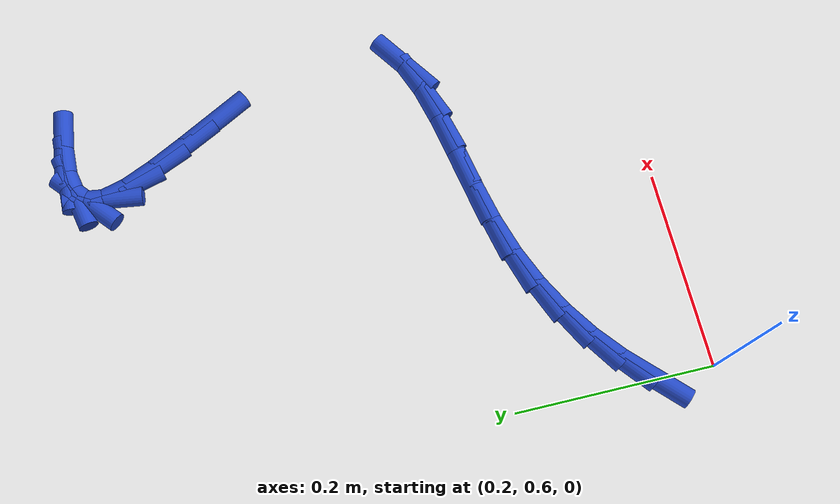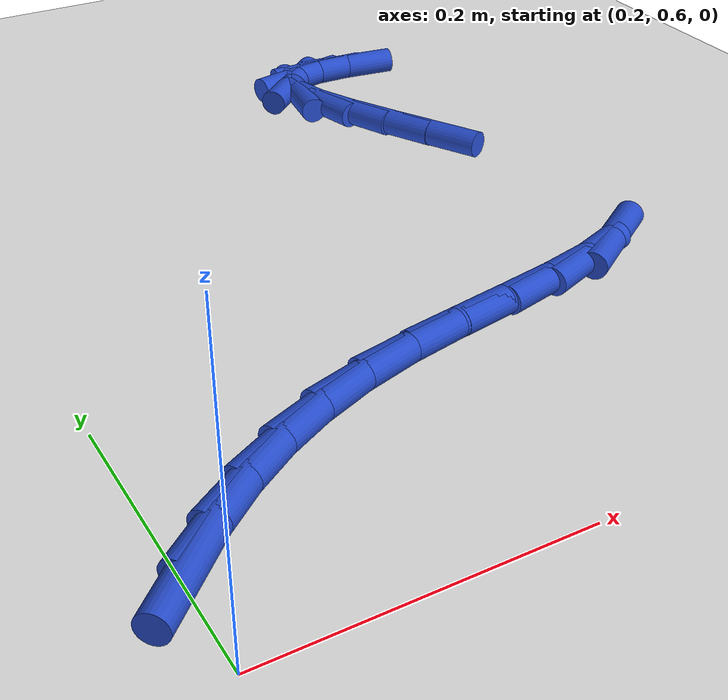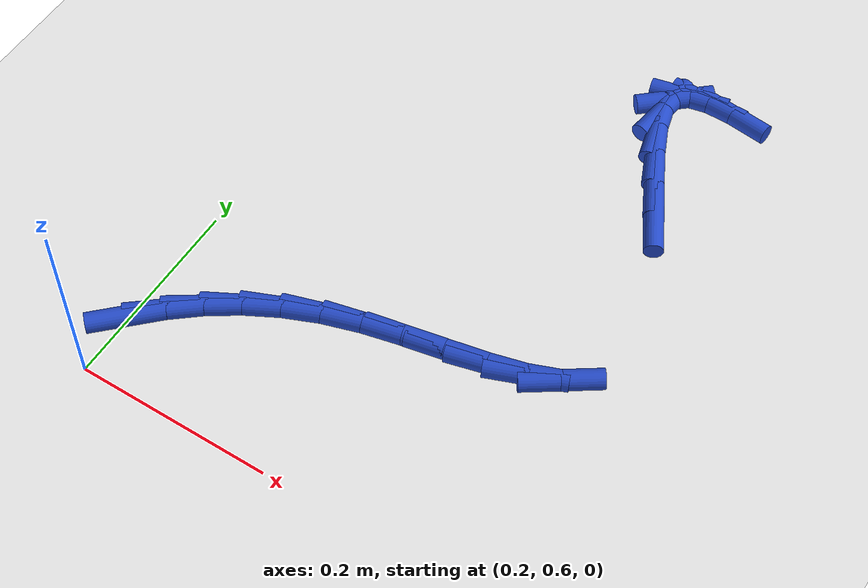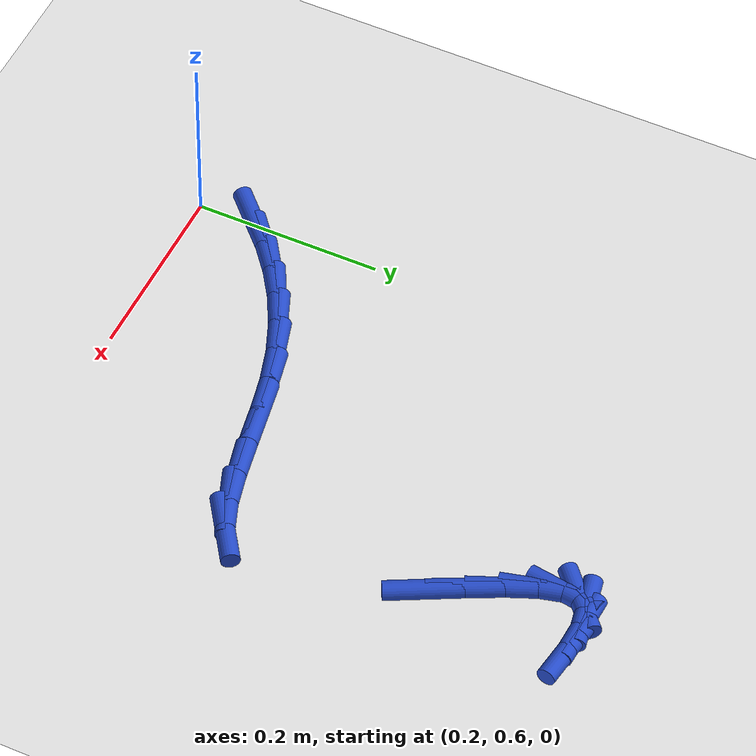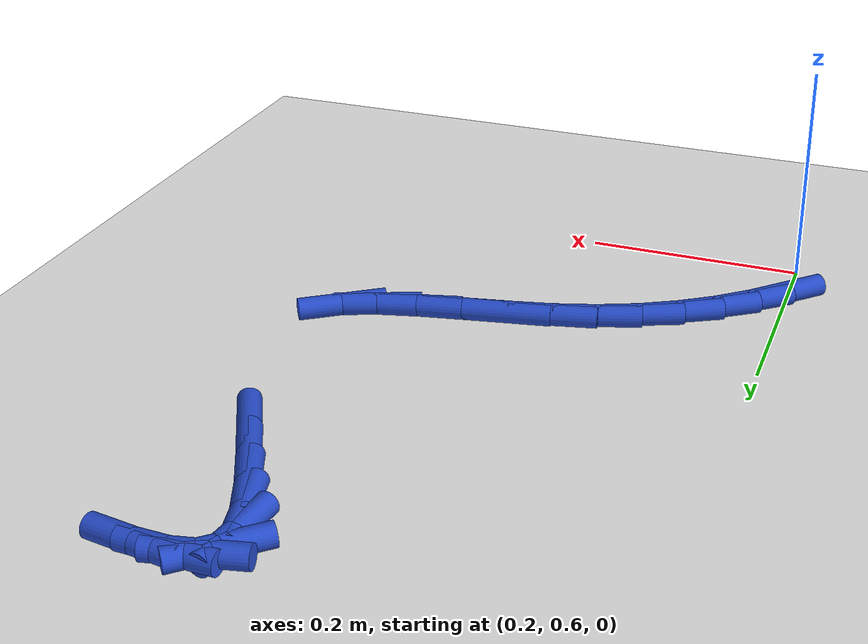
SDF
<sdf version="1.6">
 <world name="default">
  <model name="ground_plane">
   <static>1</static>
   <link name="link">
    <collision name="collision">
     <geometry><plane><normal>0 0 1</normal><size>100 100</size></plane></geometry>
     <surface><friction><ode><mu>100</mu><mu2>50</mu2></ode></friction></surface>
    </collision>
    <visual name="visual">
     <cast_shadows>0</cast_shadows>
     <geometry><plane><normal>0 0 1</normal><size>100 100</size></plane></geometry>
     <material>
      <script><uri>file://media/materials/scripts/gazebo.material</uri><name>Gazebo/WhiteGlow</name></script>
     </material>
    </visual>
   </link>
  </model>
  <model name="line">
   <link name="link_20">
    <pose>0.20223995854150328 0.6630501790610244 0.01 0 1.57 0.7764470902443564</pose>
    <collision name="collision">
     <geometry><cylinder><radius>0.01</radius><length>0.08</length></cylinder></geometry>
    </collision>
    <visual name="visual">
     <material>
      <script><name>Gazebo/Blue</name><uri>file://media/materials/scripts/gazebo.material</uri></script>
     </material>
     <geometry><cylinder><radius>0.01</radius><length>0.08</length></cylinder></geometry>
    </visual>
   </link>
   <link name="link_21">
    <pose>0.22713407020538032 0.6875025747308313 0.01 0 1.57 0.685401648080828</pose>
    <collision name="collision">
     <geometry><cylinder><radius>0.01</radius><length>0.08</length></cylinder></geometry>
    </collision>
    <visual name="visual">
     <material>
      <script><name>Gazebo/Blue</name><uri>file://media/materials/scripts/gazebo.material</uri></script>
     </material>
     <geometry><cylinder><radius>0.01</radius><length>0.08</length></cylinder></geometry>
    </visual>
   </link>
   <link name="link_22">
    <pose>0.2543682812670676 0.7097702086440774 0.01 0 1.57 0.58978925772115</pose>
    <collision name="collision">
     <geometry><cylinder><radius>0.01</radius><length>0.08</length></cylinder></geometry>
    </collision>
    <visual name="visual">
     <material>
      <script><name>Gazebo/Blue</name><uri>file://media/materials/scripts/gazebo.material</uri></script>
     </material>
     <geometry><cylinder><radius>0.01</radius><length>0.08</length></cylinder></geometry>
    </visual>
   </link>
   <link name="link_23">
    <pose>0.2840800345960222 0.7296548135146774 0.01 0 1.57 0.49145849479141723</pose>
    <collision name="collision">
     <geometry><cylinder><radius>0.01</radius><length>0.08</length></cylinder></geometry>
    </collision>
    <visual name="visual">
     <material>
      <script><name>Gazebo/Blue</name><uri>file://media/materials/scripts/gazebo.material</uri></script>
     </material>
     <geometry><cylinder><radius>0.01</radius><length>0.08</length></cylinder></geometry>
    </visual>
   </link>
   <link name="link_24">
    <pose>0.31640677306170073 0.7469581220565455 0.01 0 1.57 0.39254038680555475</pose>
    <collision name="collision">
     <geometry><cylinder><radius>0.01</radius><length>0.08</length></cylinder></geometry>
    </collision>
    <visual name="visual">
     <material>
      <script><name>Gazebo/Blue</name><uri>file://media/materials/scripts/gazebo.material</uri></script>
     </material>
     <geometry><cylinder><radius>0.01</radius><length>0.08</length></cylinder></geometry>
    </visual>
   </link>
   <link name="link_25">
    <pose>0.3514859395335599 0.7614818669835968 0.01 0 1.57 0.2954738349655322</pose>
    <collision name="collision">
     <geometry><cylinder><radius>0.01</radius><length>0.08</length></cylinder></geometry>
    </collision>
    <visual name="visual">
     <material>
      <script><name>Gazebo/Blue</name><uri>file://media/materials/scripts/gazebo.material</uri></script>
     </material>
     <geometry><cylinder><radius>0.01</radius><length>0.08</length></cylinder></geometry>
    </visual>
   </link>
   <link name="link_26">
    <pose>0.38944411747533997 0.7730357244928493 0.01 0 1.57 0.21881490029956532</pose>
    <collision name="collision">
     <geometry><cylinder><radius>0.01</radius><length>0.08</length></cylinder></geometry>
    </collision>
    <visual name="visual">
     <material>
      <script><name>Gazebo/Blue</name><uri>file://media/materials/scripts/gazebo.material</uri></script>
     </material>
     <geometry><cylinder><radius>0.01</radius><length>0.08</length></cylinder></geometry>
    </visual>
   </link>
   <link name="link_27">
    <pose>0.4296575821303383 0.7819782093483044 0.01 0 1.57 0.18459084739233952</pose>
    <collision name="collision">
     <geometry><cylinder><radius>0.01</radius><length>0.08</length></cylinder></geometry>
    </collision>
    <visual name="visual">
     <material>
      <script><name>Gazebo/Blue</name><uri>file://media/materials/scripts/gazebo.material</uri></script>
     </material>
     <geometry><cylinder><radius>0.01</radius><length>0.08</length></cylinder></geometry>
    </visual>
   </link>
   <link name="link_28">
    <pose>0.47027899215161567 0.7895628924490602 0.01 0 1.57 0.19121079953961492</pose>
    <collision name="collision">
     <geometry><cylinder><radius>0.01</radius><length>0.08</length></cylinder></geometry>
    </collision>
    <visual name="visual">
     <material>
      <script><name>Gazebo/Blue</name><uri>file://media/materials/scripts/gazebo.material</uri></script>
     </material>
     <geometry><cylinder><radius>0.01</radius><length>0.08</length></cylinder></geometry>
    </visual>
   </link>
   <link name="link_29">
    <pose>0.5093483279760453 0.7971257670228226 0.01 0 1.57 0.24465435465526797</pose>
    <collision name="collision">
     <geometry><cylinder><radius>0.01</radius><length>0.08</length></cylinder></geometry>
    </collision>
    <visual name="visual">
     <material>
      <script><name>Gazebo/Blue</name><uri>file://media/materials/scripts/gazebo.material</uri></script>
     </material>
     <geometry><cylinder><radius>0.01</radius><length>0.08</length></cylinder></geometry>
    </visual>
   </link>
   <link name="link_30">
    <pose>0.5449055700405006 0.8060028262972974 0.01 0 1.57 0.36590014277717187</pose>
    <collision name="collision">
     <geometry><cylinder><radius>0.01</radius><length>0.08</length></cylinder></geometry>
    </collision>
    <visual name="visual">
     <material>
      <script><name>Gazebo/Blue</name><uri>file://media/materials/scripts/gazebo.material</uri></script>
     </material>
     <geometry><cylinder><radius>0.01</radius><length>0.08</length></cylinder></geometry>
    </visual>
   </link>
   <link name="link_31">
    <pose>0.5749906987818554 0.8175300635001914 0.01 0 1.57 0.6004707490488328</pose>
    <collision name="collision">
     <geometry><cylinder><radius>0.01</radius><length>0.08</length></cylinder></geometry>
    </collision>
    <visual name="visual">
     <material>
      <script><name>Gazebo/Blue</name><uri>file://media/materials/scripts/gazebo.material</uri></script>
     </material>
     <geometry><cylinder><radius>0.01</radius><length>0.08</length></cylinder></geometry>
    </visual>
   </link>
   <link name="link_38">
    <pose>0.5578358959539181 1.0231128988611746 0.01 0 1.57 -1.080754067889779</pose>
    <collision name="collision">
     <geometry><cylinder><radius>0.01</radius><length>0.08</length></cylinder></geometry>
    </collision>
    <visual name="visual">
     <material>
      <script><name>Gazebo/Blue</name><uri>file://media/materials/scripts/gazebo.material</uri></script>
     </material>
     <geometry><cylinder><radius>0.01</radius><length>0.08</length></cylinder></geometry>
    </visual>
   </link>
   <link name="link_39">
    <pose>0.5382940287674294 1.0597464062540187 0.01 0 1.57 -1.0994013148943165</pose>
    <collision name="collision">
     <geometry><cylinder><radius>0.01</radius><length>0.08</length></cylinder></geometry>
    </collision>
    <visual name="visual">
     <material>
      <script><name>Gazebo/Blue</name><uri>file://media/materials/scripts/gazebo.material</uri></script>
     </material>
     <geometry><cylinder><radius>0.01</radius><length>0.08</length></cylinder></geometry>
    </visual>
   </link>
   <link name="link_40">
    <pose>0.5209524347094701 1.093768069749553 0.01 0 1.57 -1.162746480978303</pose>
    <collision name="collision">
     <geometry><cylinder><radius>0.01</radius><length>0.08</length></cylinder></geometry>
    </collision>
    <visual name="visual">
     <material>
      <script><name>Gazebo/Blue</name><uri>file://media/materials/scripts/gazebo.material</uri></script>
     </material>
     <geometry><cylinder><radius>0.01</radius><length>0.08</length></cylinder></geometry>
    </visual>
   </link>
   <link name="link_41">
    <pose>0.5080295325112956 1.1236604250948667 0.01 0 1.57 -1.317126105665437</pose>
    <collision name="collision">
     <geometry><cylinder><radius>0.01</radius><length>0.08</length></cylinder></geometry>
    </collision>
    <visual name="visual">
     <material>
      <script><name>Gazebo/Blue</name><uri>file://media/materials/scripts/gazebo.material</uri></script>
     </material>
     <geometry><cylinder><radius>0.01</radius><length>0.08</length></cylinder></geometry>
    </visual>
   </link>
   <link name="link_42">
    <pose>0.5017437409041609 1.1479060080370476 0.01 0 1.57 1.4295170453533816</pose>
    <collision name="collision">
     <geometry><cylinder><radius>0.01</radius><length>0.08</length></cylinder></geometry>
    </collision>
    <visual name="visual">
     <material>
      <script><name>Gazebo/Blue</name><uri>file://media/materials/scripts/gazebo.material</uri></script>
     </material>
     <geometry><cylinder><radius>0.01</radius><length>0.08</length></cylinder></geometry>
    </visual>
   </link>
   <link name="link_43">
    <pose>0.5041882209099134 1.1650932027344842 0.01 0 1.57 0.7205648410267232</pose>
    <collision name="collision">
     <geometry><cylinder><radius>0.01</radius><length>0.08</length></cylinder></geometry>
    </collision>
    <visual name="visual">
     <material>
      <script><name>Gazebo/Blue</name><uri>file://media/materials/scripts/gazebo.material</uri></script>
     </material>
     <geometry><cylinder><radius>0.01</radius><length>0.08</length></cylinder></geometry>
    </visual>
   </link>
   <link name="link_44">
    <pose>0.5157540189764507 1.1752487568950367 0.01 0 1.57 0.20792350350129915</pose>
    <collision name="collision">
     <geometry><cylinder><radius>0.01</radius><length>0.08</length></cylinder></geometry>
    </collision>
    <visual name="visual">
     <material>
      <script><name>Gazebo/Blue</name><uri>file://media/materials/scripts/gazebo.material</uri></script>
     </material>
     <geometry><cylinder><radius>0.01</radius><length>0.08</length></cylinder></geometry>
    </visual>
   </link>
   <link name="link_45">
    <pose>0.5356046899413384 1.179436703974895 0.01 0 1.57 -0.025393909594070493</pose>
    <collision name="collision">
     <geometry><cylinder><radius>0.01</radius><length>0.08</length></cylinder></geometry>
    </collision>
    <visual name="visual">
     <material>
      <script><name>Gazebo/Blue</name><uri>file://media/materials/scripts/gazebo.material</uri></script>
     </material>
     <geometry><cylinder><radius>0.01</radius><length>0.08</length></cylinder></geometry>
    </visual>
   </link>
   <link name="link_46">
    <pose>0.5628766468522989 1.1787440134662697 0.01 0 1.57 -0.1318468066890831</pose>
    <collision name="collision">
     <geometry><cylinder><radius>0.01</radius><length>0.08</length></cylinder></geometry>
    </collision>
    <visual name="visual">
     <material>
      <script><name>Gazebo/Blue</name><uri>file://media/materials/scripts/gazebo.material</uri></script>
     </material>
     <geometry><cylinder><radius>0.01</radius><length>0.08</length></cylinder></geometry>
    </visual>
   </link>
  </model>
 </world>
</sdf>
